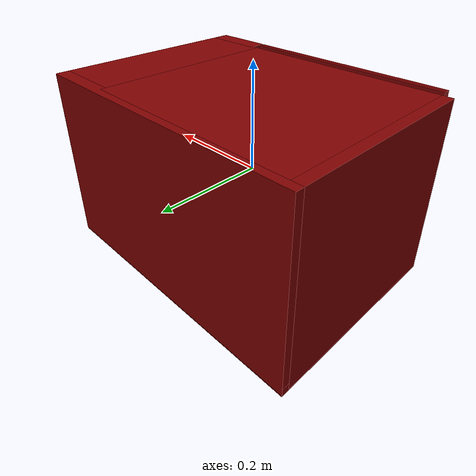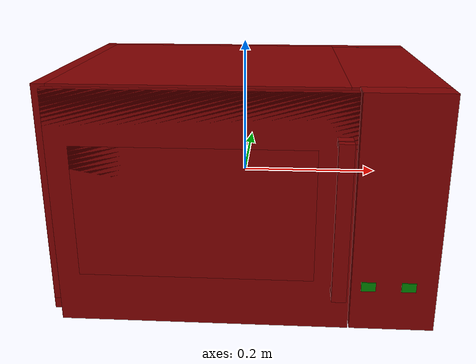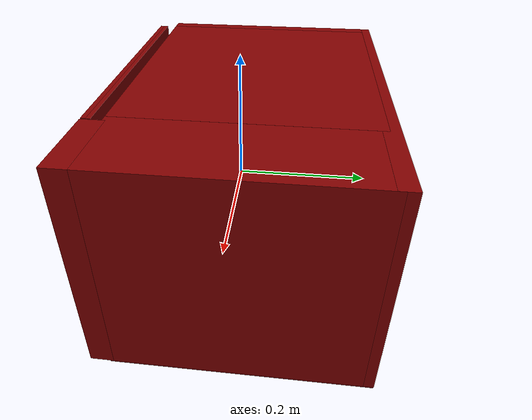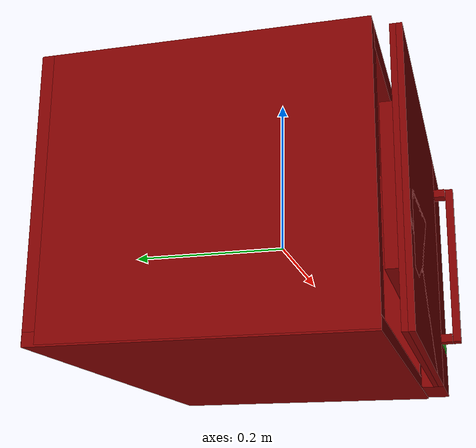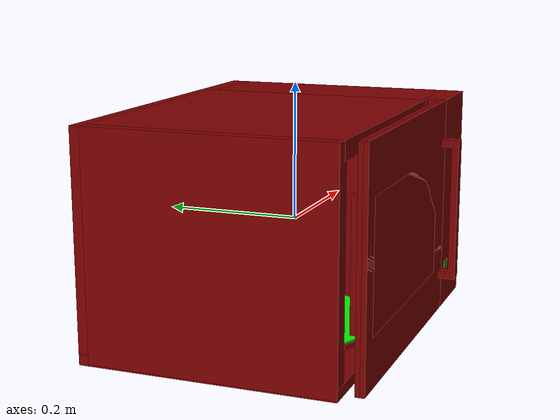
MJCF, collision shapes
<?xml version='1.0' encoding='UTF-8'?>
<mujoco model="model">
  <option timestep="0.002" gravity="0.0 0.0 -9.81"/>
  <compiler angle="radian"/>
  <asset>
    <mesh file="visuals/door.obj" name="door_vis"/>
    <mesh file="visuals/door_Clear.obj" name="door_Clear_vis"/>
    <mesh file="visuals/Body001.obj" name="Body001_vis"/>
    <mesh file="visuals/Disc001.obj" name="Disc001_vis"/>
    <texture file="visuals/T_BC001.png" name="Body001_material" type="2d"/>
    <material name="Body001_material" rgba="1 1 1 1.0" texture="Body001_material" shininess="0.141421377658844" specular="1"/>
    <texture file="visuals/T_BC001.png" name="door_material" type="2d"/>
    <material name="door_material" rgba="1 1 1 1.0" texture="door_material" shininess="0.141421377658844" specular="1"/>
    <material name="door_Clear_material" rgba="0.01037973165512085 0.01037973165512085 0.01037973165512085 0.8029197454452515" shininess="0.5" specular="0.3103448502657381"/>
    <texture file="visuals/T_BC001.png" name="Disc001_material" type="2d"/>
    <material name="Disc001_material" rgba="1 1 1 1.0" texture="Disc001_material" shininess="0.141421377658844" specular="0.5"/>
  </asset>
  <default>
    <default class="visual">
      <geom conaffinity="0" contype="0" group="1" type="mesh"/>
    </default>
    <default class="collision">
      <geom group="0" rgba="0.5 0 0 0.5"/>
    </default>
    <default class="spawn">
      <geom group="0" rgba="1 1 1 0.5" contype="0" conaffinity="0"/>
      <site group="0" rgba="1 1 1 0.5"/>
    </default>
    <default class="region">
      <geom group="1" conaffinity="0" contype="0" rgba="0 1 0 0"/>
    </default>
  </default>
  <worldbody>
    <body>
      <body name="object">
        <geom class="collision" type="box" pos="0.17568564 -0.18728293 -0.09789214" size="0.009654606692492962 0.0006261059897951782 0.006593481637537479" quat="1.0 0.0 0.0 0.0" name="stop_button" rgba="0.0 0.5 0 0.5"/>
        <geom class="collision" type="box" pos="0.22910032 -0.18707716 -0.09760179" size="0.009654614143073559 0.0006261059897951782 0.006593488622456789" quat="1.0 0.0 0.0 0.0" name="start_button" rgba="0.0 0.5 0 0.5"/>
        <geom class="collision" type="cylinder" pos="-0.05689941 0.01663616 -0.13820649" size="0.15419769287109375 0.0011919435346499085" quat="7.549790126404332e-08 0.0 0.0 1.0" name="tray" rgba="0 1 0 0.5"/>
        <geom mesh="Body001_vis" type="mesh" solimp="0.998 0.998 0.001" solref="0.001 1" friction="0.95 0.3 0.1" class="visual" material="Body001_material"/>
        <geom class="collision" type="box" pos="-0.00000003 0.20141830 0.00093462" size="0.2667255699634552 0.011984211392700672 0.16359718143939972" quat="1.0 0.0 0.0 0.0"/>
        <geom class="collision" type="box" pos="-0.25403982 0.02114284 0.00093459" size="0.012686800211668015 0.17804817855358124 0.1635972559452057" quat="1.0 0.0 0.0 0.0"/>
        <geom class="collision" type="box" pos="0.19802403 0.02114284 0.00091655" size="0.06870240718126297 0.17804838716983795 0.1635793149471283" quat="1.0 0.0 0.0 0.0"/>
        <geom class="collision" type="box" pos="-0.05283179 0.02114284 0.15184873" size="0.1950417459011078 0.17804861068725586 0.01268356665968895" quat="1.0 0.0 0.0 0.0"/>
        <geom class="collision" type="box" pos="-0.00015752 0.02814339 -0.15695258" size="0.2665683925151825 0.185049369931221 0.007873866707086563" quat="1.0 0.0 0.0 0.0"/>
        <geom class="collision" type="box" pos="0.20986769 -0.16919050 0.00093448" size="0.05685887113213539 0.01701016165316105 0.16359752416610718" quat="1.0 0.0 0.0 0.0"/>
        <body name="door">
          <joint axis="0.0 0.0 1.0" pos="-0.25064364 -0.17070249 0.00006511" limited="true" name="microjoint" range="-1.5707963267948966 0.0" type="hinge" damping="1" frictionloss="1" armature=".01" stiffness="0.05"/>
          <geom mesh="door_vis" type="mesh" solimp="0.998 0.998 0.001" solref="0.001 1" friction="0.95 0.3 0.1" class="visual" material="door_material"/>
          <geom class="collision" type="box" pos="-0.04740505 -0.17941912 0.00093445" size="0.19814977049827576 0.006781565025448799 0.16359759867191315" quat="1.0 0.0 0.0 0.0"/>
          <geom class="collision" type="box" pos="0.13449171 -0.20839845 0.00060428" size="0.009654595516622066 0.005131038837134838 0.10738371312618256" quat="1.0 0.0 0.0 0.0" name="door_handle_main"/>
          <geom class="collision" type="box" pos="0.13449171 -0.19495520 0.10352590" size="0.009654602035880089 0.0075681512244045734 0.00530577078461647" quat="1.0 0.0 0.0 0.0"/>
          <geom class="collision" type="box" pos="0.13449171 -0.19495520 -0.10168201" size="0.009654609486460686 0.00756815867498517 0.005305777303874493" quat="1.0 0.0 0.0 0.0"/>
          <geom class="collision" type="box" pos="-0.05644451 -0.17082328 -0.00081223" size="0.15925107896327972 0.01537742093205452 0.09145861864089966" quat="1.0 0.0 0.0 0.0"/>
          <geom class="collision" type="box" pos="-0.04740505 -0.18272437 0.00093445" size="0.19815032184123993 0.003476313780993223 0.16359786689281464" quat="1.0 0.0 0.0 0.0" name="door_main"/>
          <body name="door_Clear">
            <geom mesh="door_Clear_vis" type="mesh" solimp="0.998 0.998 0.001" solref="0.001 1" friction="0.95 0.3 0.1" class="visual" material="door_Clear_material"/>
            <geom class="collision" type="box" pos="-0.05644451 -0.17082328 -0.00081223" size="0.15925107896327972 0.01537742093205452 0.09145861864089966" quat="1.0 0.0 0.0 0.0"/>
          </body>
        </body>
        <body name="Disc001">
          <joint axis="0.0 0.0 1.0" pos="-0.05689946 0.01663616 -0.13303021" limited="false" name="Disc001_joint" range="0 360" type="hinge" damping="1" frictionloss="1" armature=".01" stiffness="0.05"/>
          <geom mesh="Disc001_vis" type="mesh" solimp="0.998 0.998 0.001" solref="0.001 1" friction="0.95 0.3 0.1" class="visual" material="Disc001_material"/>
          <geom class="collision" type="cylinder" pos="-0.05689942 0.01663615 -0.14421462" size="0.15419769287109375 0.0033758704084903" quat="7.549790126404332e-08 0.0 0.0 1.0"/>
        </body>
        <geom class="region" name="reg_int" type="box" pos="-0.05540862 0.022228474999999998 -0.003973730000000009" size="0.17685032 0.159290455 0.13404073"/>
        <geom class="region" name="reg_main" type="box" pos="4.999999997368221e-09 0.01360095 -2.3000000000383825e-07" size="0.26772670499999995 0.20080164 0.16553275"/>
      <geom class="region" name="reg_tray" type="cylinder" pos="-0.05689941 0.01663616 -0.0034737732326750453" size="0.15419769287109375 0.13254077323267505"/></body>
    </body>
  </worldbody>
  <actuator>
    <motor name="microjoint_actuator" joint="microjoint" gear="10"/>
    <motor name="Disc001_joint_actuator" joint="Disc001_joint" gear="10"/>
  </actuator>
</mujoco>
